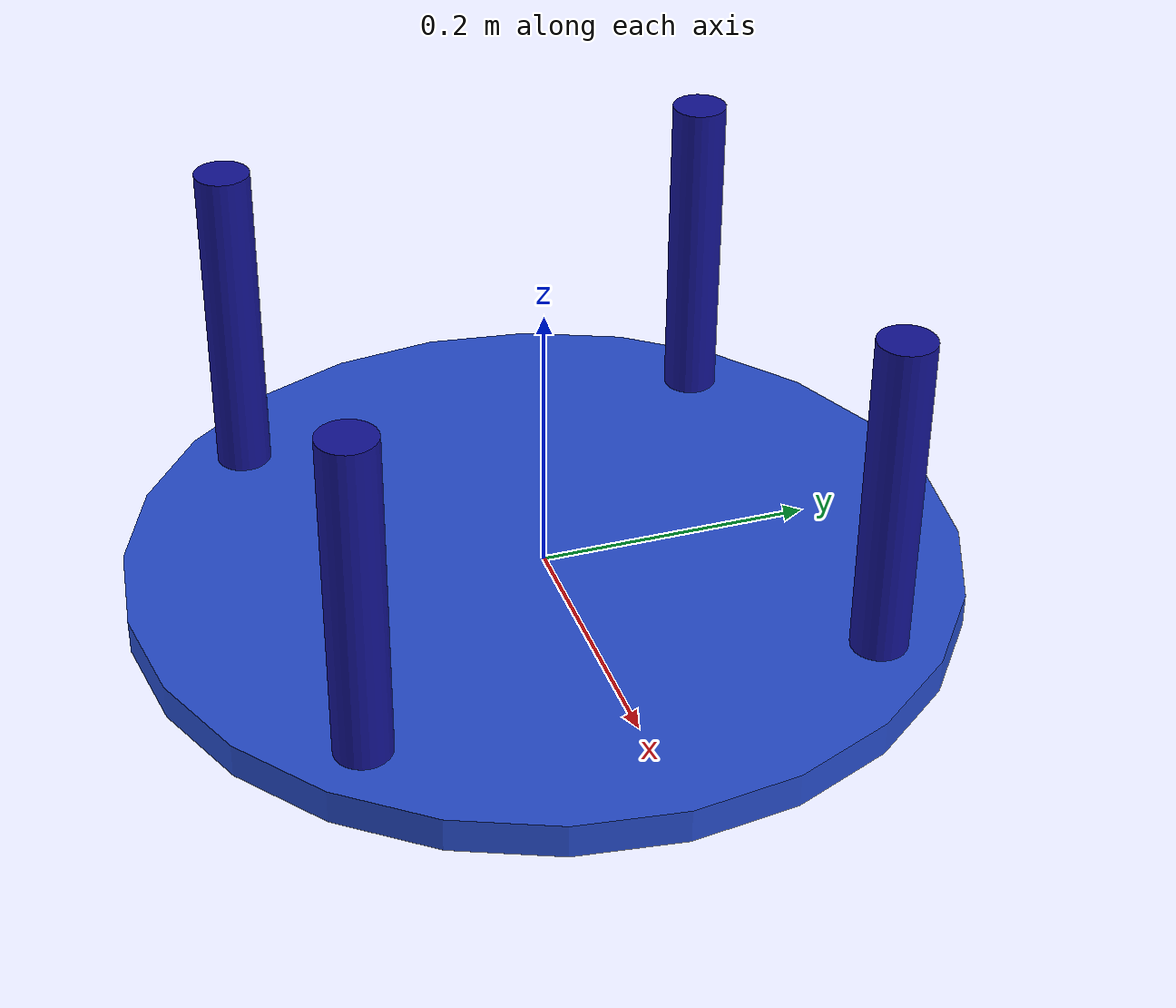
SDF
<?xml version='1.0'?>
<sdf version='1.7'>
  <model name='Leapfrog_Vehicle'>
    <link name='base_bottom'>
      <inertial>
        <mass>1</mass>
        <inertia>
          <ixx>0.145833</ixx>
          <ixy>0</ixy>
          <ixz>0</ixz>
          <iyy>0.145833</iyy>
          <iyz>0</iyz>
          <izz>0.125</izz>
        </inertia>
        <pose>0 0 0 0 -0 0</pose>
      </inertial>
      <pose>0 0 0 0 -0 0</pose>
      <gravity>1</gravity>
      <self_collide>0</self_collide>
      <kinematic>0</kinematic>
      <enable_wind>0</enable_wind>
      <visual name='visual'>
        <pose>0 0 0 0 -0 0</pose>
        <geometry>
          <cylinder>
            <radius>0.3</radius>
            <length>0.025</length>
          </cylinder>
        </geometry>
        <material>
          <lighting>1</lighting>
          <script>
            <uri>file://media/materials/scripts/gazebo.material</uri>
            <name>Gazebo/Blue</name>
          </script>
          <shader type='pixel'>
            <normal_map>__default__</normal_map>
          </shader>
          <ambient>0.063 0.671 0.055 1</ambient>
          <diffuse>0.7 0.7 0.7 1</diffuse>
          <specular>0.01 0.01 0.01 1</specular>
          <emissive>0 0 0 1</emissive>
        </material>
        <transparency>0</transparency>
        <cast_shadows>1</cast_shadows>
      </visual>
      <collision name='collision'>
        <laser_retro>0</laser_retro>
        <max_contacts>10</max_contacts>
        <pose>0 0 0 0 -0 0</pose>
        <geometry>
          <cylinder>
            <radius>0.3</radius>
            <length>0.025</length>
          </cylinder>
        </geometry>
        <surface>
          <friction>
            <ode>
              <mu>1</mu>
              <mu2>1</mu2>
              <fdir1>0 0 0</fdir1>
              <slip1>0</slip1>
              <slip2>0</slip2>
            </ode>
            <torsional>
              <coefficient>1</coefficient>
              <patch_radius>0</patch_radius>
              <surface_radius>0</surface_radius>
              <use_patch_radius>1</use_patch_radius>
              <ode>
                <slip>0</slip>
              </ode>
            </torsional>
          </friction>
          <bounce>
            <restitution_coefficient>0</restitution_coefficient>
            <threshold>1e+06</threshold>
          </bounce>
          <contact>
            <collide_without_contact>0</collide_without_contact>
            <collide_without_contact_bitmask>1</collide_without_contact_bitmask>
            <collide_bitmask>1</collide_bitmask>
            <ode>
              <soft_cfm>0</soft_cfm>
              <soft_erp>0.2</soft_erp>
              <kp>1e+13</kp>
              <kd>1</kd>
              <max_vel>0.01</max_vel>
              <min_depth>0</min_depth>
            </ode>
            <bullet>
              <split_impulse>1</split_impulse>
              <split_impulse_penetration_threshold>-0.01</split_impulse_penetration_threshold>
              <soft_cfm>0</soft_cfm>
              <soft_erp>0.2</soft_erp>
              <kp>1e+13</kp>
              <kd>1</kd>
            </bullet>
          </contact>
        </surface>
      </collision>
    </link>
    <link name='base_pillar_1'>
      <inertial>
        <mass>1</mass>
        <inertia>
          <ixx>0.145833</ixx>
          <ixy>0</ixy>
          <ixz>0</ixz>
          <iyy>0.145833</iyy>
          <iyz>0</iyz>
          <izz>0.125</izz>
        </inertia>
        <pose>0 0 0 0 -0 0</pose>
      </inertial>
      <pose>0.18 0.18 0.125 0 -0 0</pose>
      <gravity>1</gravity>
      <self_collide>0</self_collide>
      <kinematic>0</kinematic>
      <enable_wind>0</enable_wind>
      <visual name='visual'>
        <pose>0 0 0 0 -0 0</pose>
        <geometry>
          <cylinder>
            <radius>0.02</radius>
            <length>0.25</length>
          </cylinder>
        </geometry>
        <material>
          <lighting>1</lighting>
          <script>
            <uri>file://media/materials/scripts/gazebo.material</uri>
            <name>Gazebo/Grey</name>
          </script>
          <shader type='pixel'>
            <normal_map>__default__</normal_map>
          </shader>
          <ambient>0.071 0.071 0.58 1</ambient>
          <diffuse>0.7 0.7 0.7 1</diffuse>
          <specular>0.01 0.01 0.01 1</specular>
          <emissive>0 0 0 1</emissive>
        </material>
        <transparency>0</transparency>
        <cast_shadows>1</cast_shadows>
      </visual>
      <collision name='collision'>
        <laser_retro>0</laser_retro>
        <max_contacts>10</max_contacts>
        <pose>0 0 0 0 -0 0</pose>
        <geometry>
          <cylinder>
            <radius>0.02</radius>
            <length>0.25</length>
          </cylinder>
        </geometry>
        <surface>
          <friction>
            <ode>
              <mu>1</mu>
              <mu2>1</mu2>
              <fdir1>0 0 0</fdir1>
              <slip1>0</slip1>
              <slip2>0</slip2>
            </ode>
            <torsional>
              <coefficient>1</coefficient>
              <patch_radius>0</patch_radius>
              <surface_radius>0</surface_radius>
              <use_patch_radius>1</use_patch_radius>
              <ode>
                <slip>0</slip>
              </ode>
            </torsional>
          </friction>
          <bounce>
            <restitution_coefficient>0</restitution_coefficient>
            <threshold>1e+06</threshold>
          </bounce>
          <contact>
            <collide_without_contact>0</collide_without_contact>
            <collide_without_contact_bitmask>1</collide_without_contact_bitmask>
            <collide_bitmask>1</collide_bitmask>
            <ode>
              <soft_cfm>0</soft_cfm>
              <soft_erp>0.2</soft_erp>
              <kp>1e+13</kp>
              <kd>1</kd>
              <max_vel>0.01</max_vel>
              <min_depth>0</min_depth>
            </ode>
            <bullet>
              <split_impulse>1</split_impulse>
              <split_impulse_penetration_threshold>-0.01</split_impulse_penetration_threshold>
              <soft_cfm>0</soft_cfm>
              <soft_erp>0.2</soft_erp>
              <kp>1e+13</kp>
              <kd>1</kd>
            </bullet>
          </contact>
        </surface>
      </collision>
    </link>
    <link name='base_pillar_2'>
      <inertial>
        <mass>1</mass>
        <inertia>
          <ixx>0.145833</ixx>
          <ixy>0</ixy>
          <ixz>0</ixz>
          <iyy>0.145833</iyy>
          <iyz>0</iyz>
          <izz>0.125</izz>
        </inertia>
        <pose>0 0 0 0 -0 0</pose>
      </inertial>
      <pose>0.18 -0.18 0.125 0 -0 0</pose>
      <gravity>1</gravity>
      <self_collide>0</self_collide>
      <kinematic>0</kinematic>
      <enable_wind>0</enable_wind>
      <visual name='visual'>
        <pose>0 0 0 0 -0 0</pose>
        <geometry>
          <cylinder>
            <radius>0.02</radius>
            <length>0.25</length>
          </cylinder>
        </geometry>
        <material>
          <lighting>1</lighting>
          <script>
            <uri>file://media/materials/scripts/gazebo.material</uri>
            <name>Gazebo/Grey</name>
          </script>
          <shader type='pixel'>
            <normal_map>__default__</normal_map>
          </shader>
          <ambient>0.071 0.071 0.58 1</ambient>
          <diffuse>0.7 0.7 0.7 1</diffuse>
          <specular>0.01 0.01 0.01 1</specular>
          <emissive>0 0 0 1</emissive>
        </material>
        <transparency>0</transparency>
        <cast_shadows>1</cast_shadows>
      </visual>
      <collision name='collision'>
        <laser_retro>0</laser_retro>
        <max_contacts>10</max_contacts>
        <pose>0 0 0 0 -0 0</pose>
        <geometry>
          <cylinder>
            <radius>0.02</radius>
            <length>0.25</length>
          </cylinder>
        </geometry>
        <surface>
          <friction>
            <ode>
              <mu>1</mu>
              <mu2>1</mu2>
              <fdir1>0 0 0</fdir1>
              <slip1>0</slip1>
              <slip2>0</slip2>
            </ode>
            <torsional>
              <coefficient>1</coefficient>
              <patch_radius>0</patch_radius>
              <surface_radius>0</surface_radius>
              <use_patch_radius>1</use_patch_radius>
              <ode>
                <slip>0</slip>
              </ode>
            </torsional>
          </friction>
          <bounce>
            <restitution_coefficient>0</restitution_coefficient>
            <threshold>1e+06</threshold>
          </bounce>
          <contact>
            <collide_without_contact>0</collide_without_contact>
            <collide_without_contact_bitmask>1</collide_without_contact_bitmask>
            <collide_bitmask>1</collide_bitmask>
            <ode>
              <soft_cfm>0</soft_cfm>
              <soft_erp>0.2</soft_erp>
              <kp>1e+13</kp>
              <kd>1</kd>
              <max_vel>0.01</max_vel>
              <min_depth>0</min_depth>
            </ode>
            <bullet>
              <split_impulse>1</split_impulse>
              <split_impulse_penetration_threshold>-0.01</split_impulse_penetration_threshold>
              <soft_cfm>0</soft_cfm>
              <soft_erp>0.2</soft_erp>
              <kp>1e+13</kp>
              <kd>1</kd>
            </bullet>
          </contact>
        </surface>
      </collision>
    </link>
    <link name='base_pillar_3'>
      <inertial>
        <mass>1</mass>
        <inertia>
          <ixx>0.145833</ixx>
          <ixy>0</ixy>
          <ixz>0</ixz>
          <iyy>0.145833</iyy>
          <iyz>0</iyz>
          <izz>0.125</izz>
        </inertia>
        <pose>0 0 0 0 -0 0</pose>
      </inertial>
      <pose>-0.18 0.18 0.125 0 -0 0</pose>
      <gravity>1</gravity>
      <self_collide>0</self_collide>
      <kinematic>0</kinematic>
      <enable_wind>0</enable_wind>
      <visual name='visual'>
        <pose>0 0 0 0 -0 0</pose>
        <geometry>
          <cylinder>
            <radius>0.02</radius>
            <length>0.25</length>
          </cylinder>
        </geometry>
        <material>
          <lighting>1</lighting>
          <script>
            <uri>file://media/materials/scripts/gazebo.material</uri>
            <name>Gazebo/Grey</name>
          </script>
          <shader type='pixel'>
            <normal_map>__default__</normal_map>
          </shader>
          <ambient>0.071 0.071 0.58 1</ambient>
          <diffuse>0.7 0.7 0.7 1</diffuse>
          <specular>0.01 0.01 0.01 1</specular>
          <emissive>0 0 0 1</emissive>
        </material>
        <transparency>0</transparency>
        <cast_shadows>1</cast_shadows>
      </visual>
      <collision name='collision'>
        <laser_retro>0</laser_retro>
        <max_contacts>10</max_contacts>
        <pose>0 0 0 0 -0 0</pose>
        <geometry>
          <cylinder>
            <radius>0.02</radius>
            <length>0.25</length>
          </cylinder>
        </geometry>
        <surface>
          <friction>
            <ode>
              <mu>1</mu>
              <mu2>1</mu2>
              <fdir1>0 0 0</fdir1>
              <slip1>0</slip1>
              <slip2>0</slip2>
            </ode>
            <torsional>
              <coefficient>1</coefficient>
              <patch_radius>0</patch_radius>
              <surface_radius>0</surface_radius>
              <use_patch_radius>1</use_patch_radius>
              <ode>
                <slip>0</slip>
              </ode>
            </torsional>
          </friction>
          <bounce>
            <restitution_coefficient>0</restitution_coefficient>
            <threshold>1e+06</threshold>
          </bounce>
          <contact>
            <collide_without_contact>0</collide_without_contact>
            <collide_without_contact_bitmask>1</collide_without_contact_bitmask>
            <collide_bitmask>1</collide_bitmask>
            <ode>
              <soft_cfm>0</soft_cfm>
              <soft_erp>0.2</soft_erp>
              <kp>1e+13</kp>
              <kd>1</kd>
              <max_vel>0.01</max_vel>
              <min_depth>0</min_depth>
            </ode>
            <bullet>
              <split_impulse>1</split_impulse>
              <split_impulse_penetration_threshold>-0.01</split_impulse_penetration_threshold>
              <soft_cfm>0</soft_cfm>
              <soft_erp>0.2</soft_erp>
              <kp>1e+13</kp>
              <kd>1</kd>
            </bullet>
          </contact>
        </surface>
      </collision>
    </link>
    <link name='base_pillar_4'>
      <inertial>
        <mass>1</mass>
        <inertia>
          <ixx>0.145833</ixx>
          <ixy>0</ixy>
          <ixz>0</ixz>
          <iyy>0.145833</iyy>
          <iyz>0</iyz>
          <izz>0.125</izz>
        </inertia>
        <pose>0 0 0 0 -0 0</pose>
      </inertial>
      <pose>-0.18 -0.18 0.125 0 -0 0</pose>
      <gravity>1</gravity>
      <self_collide>0</self_collide>
      <kinematic>0</kinematic>
      <enable_wind>0</enable_wind>
      <visual name='visual'>
        <pose>0 0 0 0 -0 0</pose>
        <geometry>
          <cylinder>
            <radius>0.02</radius>
            <length>0.25</length>
          </cylinder>
        </geometry>
        <material>
          <lighting>1</lighting>
          <script>
            <uri>file://media/materials/scripts/gazebo.material</uri>
            <name>Gazebo/Grey</name>
          </script>
          <shader type='pixel'>
            <normal_map>__default__</normal_map>
          </shader>
          <ambient>0.071 0.071 0.58 1</ambient>
          <diffuse>0.7 0.7 0.7 1</diffuse>
          <specular>0.01 0.01 0.01 1</specular>
          <emissive>0 0 0 1</emissive>
        </material>
        <transparency>0</transparency>
        <cast_shadows>1</cast_shadows>
      </visual>
      <collision name='collision'>
        <laser_retro>0</laser_retro>
        <max_contacts>10</max_contacts>
        <pose>0 0 0 0 -0 0</pose>
        <geometry>
          <cylinder>
            <radius>0.02</radius>
            <length>0.25</length>
          </cylinder>
        </geometry>
        <surface>
          <friction>
            <ode>
              <mu>1</mu>
              <mu2>1</mu2>
              <fdir1>0 0 0</fdir1>
              <slip1>0</slip1>
              <slip2>0</slip2>
            </ode>
            <torsional>
              <coefficient>1</coefficient>
              <patch_radius>0</patch_radius>
              <surface_radius>0</surface_radius>
              <use_patch_radius>1</use_patch_radius>
              <ode>
                <slip>0</slip>
              </ode>
            </torsional>
          </friction>
          <bounce>
            <restitution_coefficient>0</restitution_coefficient>
            <threshold>1e+06</threshold>
          </bounce>
          <contact>
            <collide_without_contact>0</collide_without_contact>
            <collide_without_contact_bitmask>1</collide_without_contact_bitmask>
            <collide_bitmask>1</collide_bitmask>
            <ode>
              <soft_cfm>0</soft_cfm>
              <soft_erp>0.2</soft_erp>
              <kp>1e+13</kp>
              <kd>1</kd>
              <max_vel>0.01</max_vel>
              <min_depth>0</min_depth>
            </ode>
            <bullet>
              <split_impulse>1</split_impulse>
              <split_impulse_penetration_threshold>-0.01</split_impulse_penetration_threshold>
              <soft_cfm>0</soft_cfm>
              <soft_erp>0.2</soft_erp>
              <kp>1e+13</kp>
              <kd>1</kd>
            </bullet>
          </contact>
        </surface>
      </collision>
    </link>
    <link name='base_top'>
      <inertial>
        <mass>1</mass>
        <inertia>
          <ixx>0.145833</ixx>
          <ixy>0</ixy>
          <ixz>0</ixz>
          <iyy>0.145833</iyy>
          <iyz>0</iyz>
          <izz>0.125</izz>
        </inertia>
        <pose>0 0 0 0 -0 0</pose>
      </inertial>
      <pose>0 0 0 0 -0 0</pose>
      <gravity>1</gravity>
      <self_collide>0</self_collide>
      <kinematic>0</kinematic>
      <enable_wind>0</enable_wind>
      <visual name='visual'>
        <pose>0 0 0 0 -0 0</pose>
        <geometry>
          <cylinder>
            <radius>0.3</radius>
            <length>0.025</length>
          </cylinder>
        </geometry>
        <material>
          <lighting>1</lighting>
          <script>
            <uri>file://media/materials/scripts/gazebo.material</uri>
            <name>Gazebo/Blue</name>
          </script>
          <shader type='pixel'>
            <normal_map>__default__</normal_map>
          </shader>
          <ambient>0.22 0.902 0.145 1</ambient>
          <diffuse>0.7 0.7 0.7 1</diffuse>
          <specular>0.01 0.01 0.01 1</specular>
          <emissive>0 0 0 1</emissive>
        </material>
        <transparency>0</transparency>
        <cast_shadows>1</cast_shadows>
      </visual>
      <collision name='collision'>
        <laser_retro>0</laser_retro>
        <max_contacts>10</max_contacts>
        <pose>0 0 0 0 -0 0</pose>
        <geometry>
          <cylinder>
            <radius>0.3</radius>
            <length>0.025</length>
          </cylinder>
        </geometry>
        <surface>
          <friction>
            <ode>
              <mu>1</mu>
              <mu2>1</mu2>
              <fdir1>0 0 0</fdir1>
              <slip1>0</slip1>
              <slip2>0</slip2>
            </ode>
            <torsional>
              <coefficient>1</coefficient>
              <patch_radius>0</patch_radius>
              <surface_radius>0</surface_radius>
              <use_patch_radius>1</use_patch_radius>
              <ode>
                <slip>0</slip>
              </ode>
            </torsional>
          </friction>
          <bounce>
            <restitution_coefficient>0</restitution_coefficient>
            <threshold>1e+06</threshold>
          </bounce>
          <contact>
            <collide_without_contact>0</collide_without_contact>
            <collide_without_contact_bitmask>1</collide_without_contact_bitmask>
            <collide_bitmask>1</collide_bitmask>
            <ode>
              <soft_cfm>0</soft_cfm>
              <soft_erp>0.2</soft_erp>
              <kp>1e+13</kp>
              <kd>1</kd>
              <max_vel>0.01</max_vel>
              <min_depth>0</min_depth>
            </ode>
            <bullet>
              <split_impulse>1</split_impulse>
              <split_impulse_penetration_threshold>-0.01</split_impulse_penetration_threshold>
              <soft_cfm>0</soft_cfm>
              <soft_erp>0.2</soft_erp>
              <kp>1e+13</kp>
              <kd>1</kd>
            </bullet>
          </contact>
        </surface>
      </collision>
    </link>
    <joint name='base_bottom_J_base_pillar_1' type='fixed'>
      <parent>base_bottom</parent>
      <child>base_pillar_1</child>
      <pose>0 0 -0.125 0 -0 0</pose>
      <physics>
        <ode>
          <limit>
            <cfm>0</cfm>
            <erp>0.2</erp>
          </limit>
          <suspension>
            <cfm>0</cfm>
            <erp>0.2</erp>
          </suspension>
        </ode>
      </physics>
    </joint>
    <joint name='base_bottom_J_base_pillar_2' type='fixed'>
      <parent>base_bottom</parent>
      <child>base_pillar_2</child>
      <pose>0 0 -0.125 0 -0 0</pose>
      <physics>
        <ode>
          <limit>
            <cfm>0</cfm>
            <erp>0.2</erp>
          </limit>
          <suspension>
            <cfm>0</cfm>
            <erp>0.2</erp>
          </suspension>
        </ode>
      </physics>
    </joint>
    <joint name='base_bottom_J_base_pillar_3' type='fixed'>
      <parent>base_bottom</parent>
      <child>base_pillar_3</child>
      <pose>0 0 -0.125 0 -0 0</pose>
      <physics>
        <ode>
          <limit>
            <cfm>0</cfm>
            <erp>0.2</erp>
          </limit>
          <suspension>
            <cfm>0</cfm>
            <erp>0.2</erp>
          </suspension>
        </ode>
      </physics>
    </joint>
    <joint name='base_bottom_J_base_pillar_4' type='fixed'>
      <parent>base_bottom</parent>
      <child>base_pillar_4</child>
      <pose>0 0 -0.125 0 -0 0</pose>
      <physics>
        <ode>
          <limit>
            <cfm>0</cfm>
            <erp>0.2</erp>
          </limit>
          <suspension>
            <cfm>0</cfm>
            <erp>0.2</erp>
          </suspension>
        </ode>
      </physics>
    </joint>

    <static>0</static>
    <allow_auto_disable>1</allow_auto_disable>
  </model>
</sdf>
